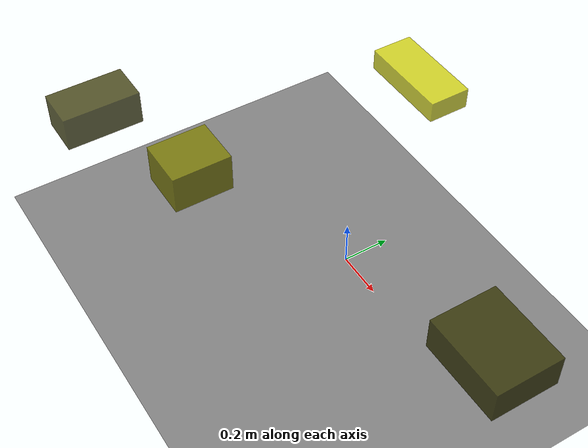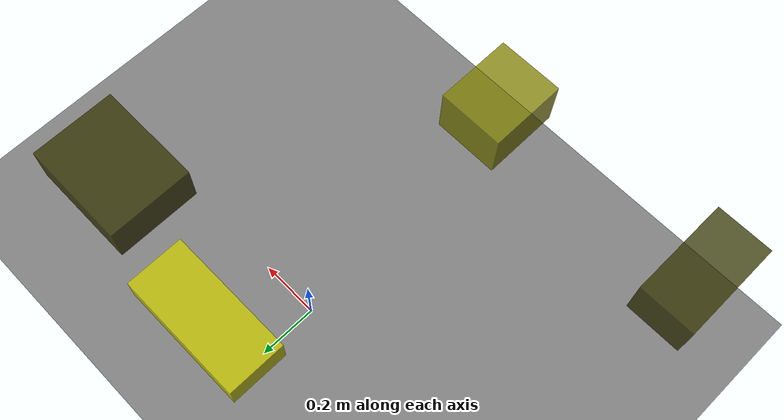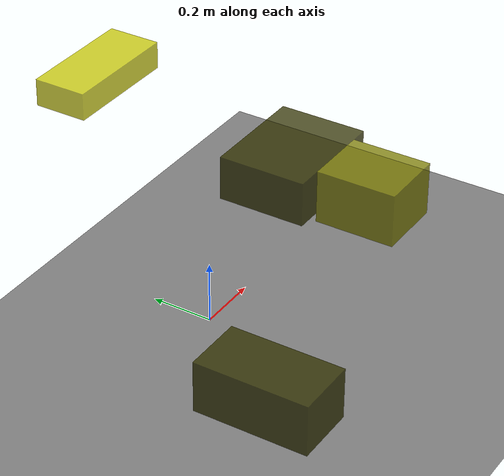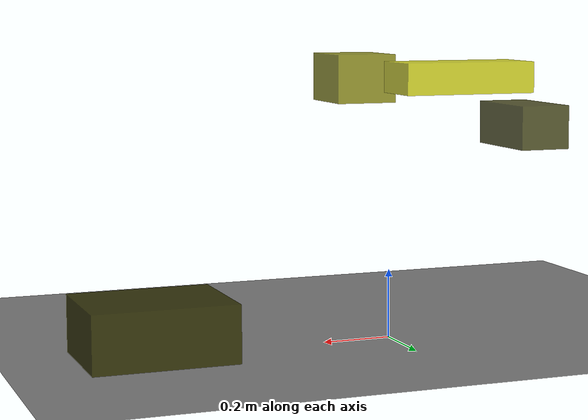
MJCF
<?xml version="1.0"?>
<mujoco model="obstacle_scene">
  <compiler angle="radian" coordinate="local"/>
  <option timestep="0.001" gravity="0 0 -9.81"/>

  <asset>
    <material name="obstacle_mat" rgba="0.8 0.8 0.0 0.8"/>
    <material name="ground_mat" rgba="0.5 0.5 0.5 1"/>
  </asset>

  <worldbody>
    <!-- Ground plane -->
    <geom name="ground" type="plane" size="3 3 0.1" material="ground_mat"/>

    <!-- Obstacles -->
    <body name="obstacle_0" pos="0.746570 0.157735 0.114513">
      <geom name="obs_0" type="box" size="0.198153 0.156003 0.079334" rgba="0.2 0.2 0.0 0.8"/>
    </body>
    <body name="obstacle_1" pos="-0.130076 -0.598722 0.726307">
      <geom name="obs_1" type="box" size="0.097324 0.114162 0.076882" rgba="0.5 0.5 0.0 0.8"/>
    </body>
    <body name="obstacle_2" pos="-0.058710 0.339192 0.774879">
      <geom name="obs_2" type="box" size="0.183407 0.081058 0.041747" rgba="0.8 0.8 0.0 0.8"/>
    </body>
    <body name="obstacle_3" pos="-0.797567 -0.687825 0.546442">
      <geom name="obs_3" type="box" size="0.087547 0.161214 0.073811" rgba="0.2 0.2 0.0 0.8"/>
    </body>
  </worldbody>
</mujoco>
